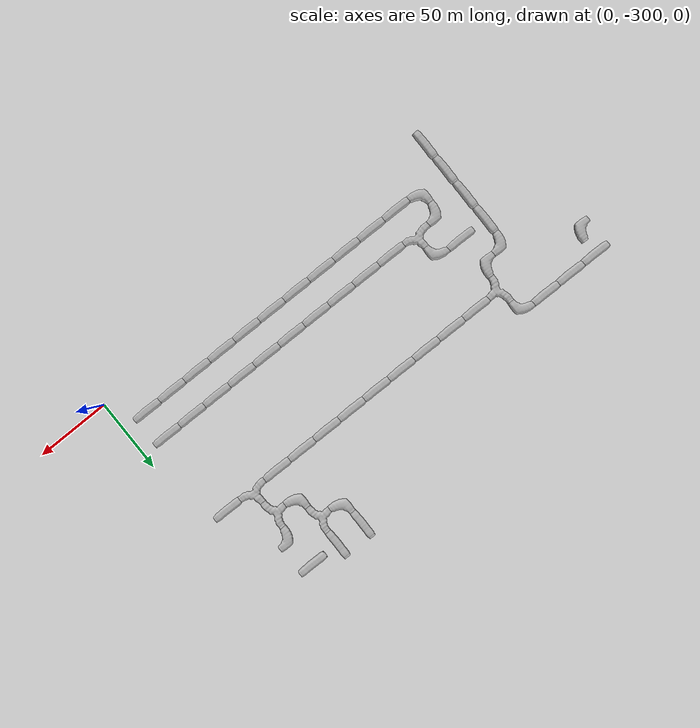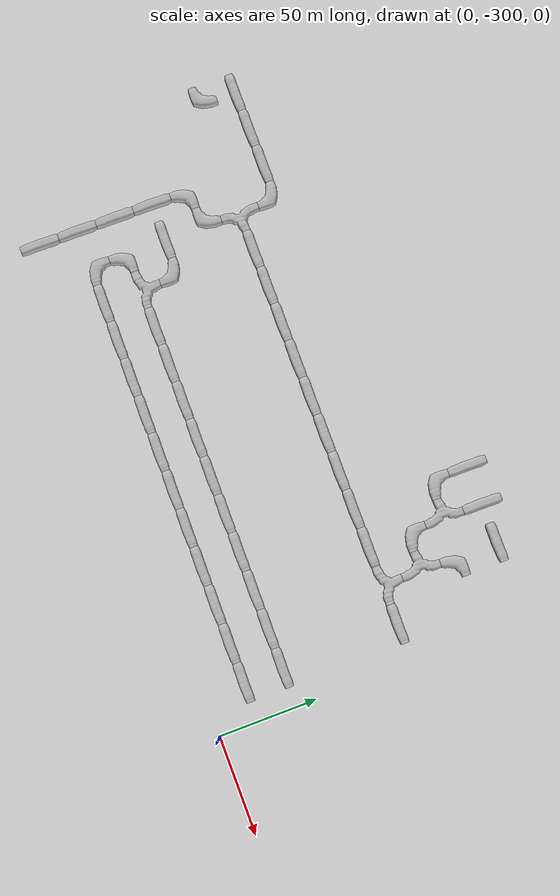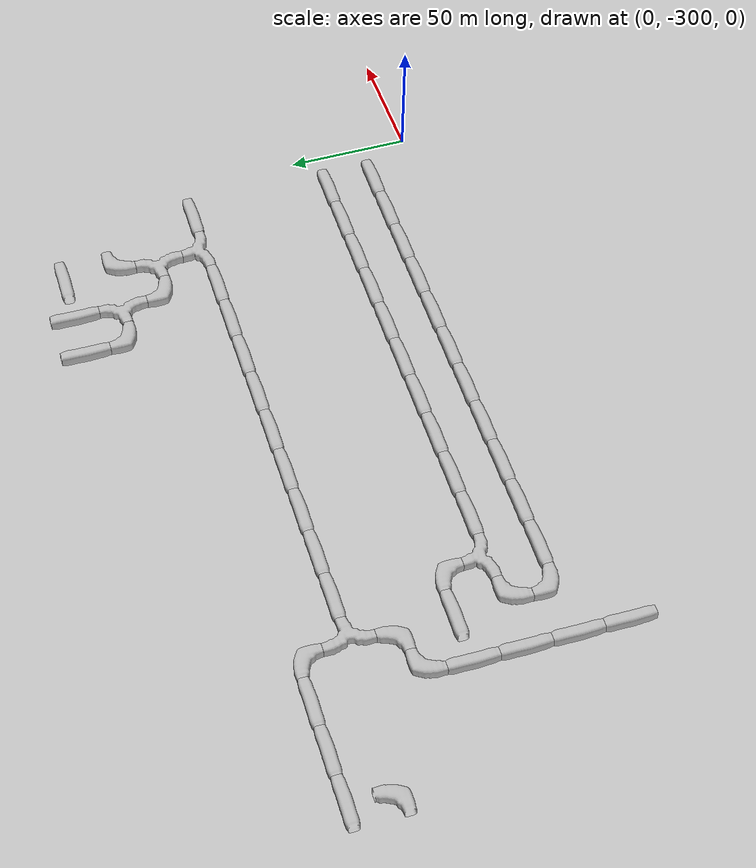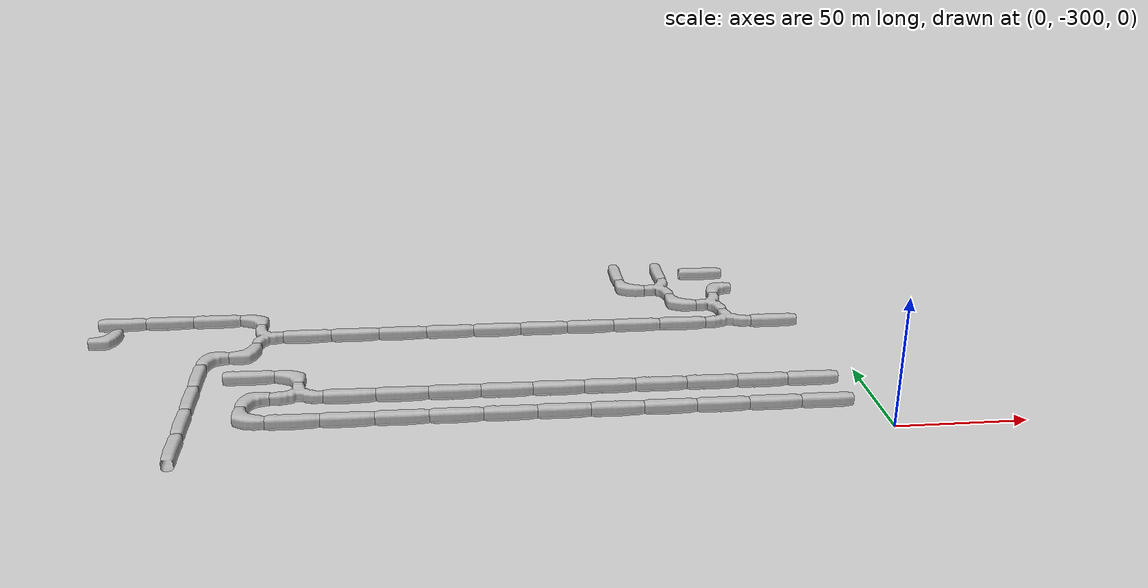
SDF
<sdf version="1.6">
 <world name="cave_32000_64">
  <include>
   <static>true</static>
   <name>cave_-3_-7</name>
   <pose>-60 -140 0 0 0 0.0</pose>
   <uri>model://cave_straight_20m</uri>
  </include>
  <include>
   <static>true</static>
   <name>cave_-3_-8</name>
   <pose>-60 -160 0 0 0 1.5707963267948966</pose>
   <uri>model://cave_3way_20m</uri>
  </include>
  <include>
   <static>true</static>
   <name>cave_-3_-9</name>
   <pose>-60 -180 0 0 0 0.0</pose>
   <uri>model://cave_L_20m</uri>
  </include>
  <include>
   <static>true</static>
   <name>cave_-2_-9</name>
   <pose>-40 -180 0 0 0 1.5707963267948966</pose>
   <uri>model://cave_3way_20m</uri>
  </include>
  <include>
   <static>true</static>
   <name>cave_-2_-10</name>
   <pose>-40 -200 0 0 0 0.0</pose>
   <uri>model://cave_3way_20m</uri>
  </include>
  <include>
   <static>true</static>
   <name>cave_-1_-10</name>
   <pose>-20 -200 0 0 0 1.5707963267948966</pose>
   <uri>model://cave_straight_20m</uri>
  </include>
  <include>
   <static>true</static>
   <name>cave_-3_-10</name>
   <pose>-60 -200 0 0 0 1.5707963267948966</pose>
   <uri>model://cave_straight_20m</uri>
  </include>
  <include>
   <static>true</static>
   <name>cave_-4_-10</name>
   <pose>-80 -200 0 0 0 1.5707963267948966</pose>
   <uri>model://cave_straight_20m</uri>
  </include>
  <include>
   <static>true</static>
   <name>cave_-5_-10</name>
   <pose>-100 -200 0 0 0 1.5707963267948966</pose>
   <uri>model://cave_straight_20m</uri>
  </include>
  <include>
   <static>true</static>
   <name>cave_-6_-10</name>
   <pose>-120 -200 0 0 0 1.5707963267948966</pose>
   <uri>model://cave_straight_20m</uri>
  </include>
  <include>
   <static>true</static>
   <name>cave_-7_-10</name>
   <pose>-140 -200 0 0 0 1.5707963267948966</pose>
   <uri>model://cave_straight_20m</uri>
  </include>
  <include>
   <static>true</static>
   <name>cave_-8_-10</name>
   <pose>-160 -200 0 0 0 1.5707963267948966</pose>
   <uri>model://cave_straight_20m</uri>
  </include>
  <include>
   <static>true</static>
   <name>cave_-9_-10</name>
   <pose>-180 -200 0 0 0 1.5707963267948966</pose>
   <uri>model://cave_straight_20m</uri>
  </include>
  <include>
   <static>true</static>
   <name>cave_-10_-10</name>
   <pose>-200 -200 0 0 0 1.5707963267948966</pose>
   <uri>model://cave_straight_20m</uri>
  </include>
  <include>
   <static>true</static>
   <name>cave_-11_-10</name>
   <pose>-220 -200 0 0 0 1.5707963267948966</pose>
   <uri>model://cave_straight_20m</uri>
  </include>
  <include>
   <static>true</static>
   <name>cave_-12_-10</name>
   <pose>-240 -200 0 0 0 -1.5707963267948966</pose>
   <uri>model://cave_3way_20m</uri>
  </include>
  <include>
   <static>true</static>
   <name>cave_-12_-11</name>
   <pose>-240 -220 0 0 0 1.5707963267948966</pose>
   <uri>model://cave_L_20m</uri>
  </include>
  <include>
   <static>true</static>
   <name>cave_-13_-11</name>
   <pose>-260 -220 0 0 0 -1.5707963267948966</pose>
   <uri>model://cave_L_20m</uri>
  </include>
  <include>
   <static>true</static>
   <name>cave_-13_-12</name>
   <pose>-260 -240 0 0 0 0.0</pose>
   <uri>model://cave_straight_20m</uri>
  </include>
  <include>
   <static>true</static>
   <name>cave_-13_-13</name>
   <pose>-260 -260 0 0 0 0.0</pose>
   <uri>model://cave_straight_20m</uri>
  </include>
  <include>
   <static>true</static>
   <name>cave_-13_-14</name>
   <pose>-260 -280 0 0 0 0.0</pose>
   <uri>model://cave_straight_20m</uri>
  </include>
  <include>
   <static>true</static>
   <name>cave_-13_-15</name>
   <pose>-260 -300 0 0 0 0.0</pose>
   <uri>model://cave_straight_20m</uri>
  </include>
  <include>
   <static>true</static>
   <name>cave_-12_-9</name>
   <pose>-240 -180 0 0 0 3.141592653589793</pose>
   <uri>model://cave_L_20m</uri>
  </include>
  <include>
   <static>true</static>
   <name>cave_-13_-9</name>
   <pose>-260 -180 0 0 0 1.5707963267948966</pose>
   <uri>model://cave_straight_20m</uri>
  </include>
  <include>
   <static>true</static>
   <name>cave_-14_-9</name>
   <pose>-280 -180 0 0 0 1.5707963267948966</pose>
   <uri>model://cave_straight_20m</uri>
  </include>
  <include>
   <static>true</static>
   <name>cave_-15_-9</name>
   <pose>-300 -180 0 0 0 1.5707963267948966</pose>
   <uri>model://cave_straight_20m</uri>
  </include>
  <include>
   <static>true</static>
   <name>cave_-15_-10</name>
   <pose>-300 -200 0 0 0 1.5707963267948966</pose>
   <uri>model://cave_L_20m</uri>
  </include>
  <include>
   <static>true</static>
   <name>cave_-1_-14</name>
   <pose>-20 -280 0 0 0 1.5707963267948966</pose>
   <uri>model://cave_straight_20m</uri>
  </include>
  <include>
   <static>true</static>
   <name>cave_-2_-14</name>
   <pose>-40 -280 0 0 0 1.5707963267948966</pose>
   <uri>model://cave_straight_20m</uri>
  </include>
  <include>
   <static>true</static>
   <name>cave_-3_-14</name>
   <pose>-60 -280 0 0 0 1.5707963267948966</pose>
   <uri>model://cave_straight_20m</uri>
  </include>
  <include>
   <static>true</static>
   <name>cave_-4_-14</name>
   <pose>-80 -280 0 0 0 1.5707963267948966</pose>
   <uri>model://cave_straight_20m</uri>
  </include>
  <include>
   <static>true</static>
   <name>cave_-5_-14</name>
   <pose>-100 -280 0 0 0 1.5707963267948966</pose>
   <uri>model://cave_straight_20m</uri>
  </include>
  <include>
   <static>true</static>
   <name>cave_-6_-14</name>
   <pose>-120 -280 0 0 0 1.5707963267948966</pose>
   <uri>model://cave_straight_20m</uri>
  </include>
  <include>
   <static>true</static>
   <name>cave_-7_-14</name>
   <pose>-140 -280 0 0 0 1.5707963267948966</pose>
   <uri>model://cave_straight_20m</uri>
  </include>
  <include>
   <static>true</static>
   <name>cave_-8_-14</name>
   <pose>-160 -280 0 0 0 1.5707963267948966</pose>
   <uri>model://cave_straight_20m</uri>
  </include>
  <include>
   <static>true</static>
   <name>cave_-9_-14</name>
   <pose>-180 -280 0 0 0 1.5707963267948966</pose>
   <uri>model://cave_straight_20m</uri>
  </include>
  <include>
   <static>true</static>
   <name>cave_-10_-14</name>
   <pose>-200 -280 0 0 0 1.5707963267948966</pose>
   <uri>model://cave_straight_20m</uri>
  </include>
  <include>
   <static>true</static>
   <name>cave_-11_-14</name>
   <pose>-220 -280 0 0 0 1.5707963267948966</pose>
   <uri>model://cave_straight_20m</uri>
  </include>
  <include>
   <static>true</static>
   <name>cave_-12_-14</name>
   <pose>-240 -280 0 0 0 0.0</pose>
   <uri>model://cave_L_20m</uri>
  </include>
  <include>
   <static>true</static>
   <name>cave_-12_-13</name>
   <pose>-240 -260 0 0 0 -1.5707963267948966</pose>
   <uri>model://cave_L_20m</uri>
  </include>
  <include>
   <static>true</static>
   <name>cave_-11_-13</name>
   <pose>-220 -260 0 0 0 0.0</pose>
   <uri>model://cave_3way_20m</uri>
  </include>
  <include>
   <static>true</static>
   <name>cave_-10_-13</name>
   <pose>-200 -260 0 0 0 1.5707963267948966</pose>
   <uri>model://cave_straight_20m</uri>
  </include>
  <include>
   <static>true</static>
   <name>cave_-9_-13</name>
   <pose>-180 -260 0 0 0 1.5707963267948966</pose>
   <uri>model://cave_straight_20m</uri>
  </include>
  <include>
   <static>true</static>
   <name>cave_-8_-13</name>
   <pose>-160 -260 0 0 0 1.5707963267948966</pose>
   <uri>model://cave_straight_20m</uri>
  </include>
  <include>
   <static>true</static>
   <name>cave_-7_-13</name>
   <pose>-140 -260 0 0 0 1.5707963267948966</pose>
   <uri>model://cave_straight_20m</uri>
  </include>
  <include>
   <static>true</static>
   <name>cave_-6_-13</name>
   <pose>-120 -260 0 0 0 1.5707963267948966</pose>
   <uri>model://cave_straight_20m</uri>
  </include>
  <include>
   <static>true</static>
   <name>cave_-5_-13</name>
   <pose>-100 -260 0 0 0 1.5707963267948966</pose>
   <uri>model://cave_straight_20m</uri>
  </include>
  <include>
   <static>true</static>
   <name>cave_-4_-13</name>
   <pose>-80 -260 0 0 0 1.5707963267948966</pose>
   <uri>model://cave_straight_20m</uri>
  </include>
  <include>
   <static>true</static>
   <name>cave_-3_-13</name>
   <pose>-60 -260 0 0 0 1.5707963267948966</pose>
   <uri>model://cave_straight_20m</uri>
  </include>
  <include>
   <static>true</static>
   <name>cave_-2_-13</name>
   <pose>-40 -260 0 0 0 1.5707963267948966</pose>
   <uri>model://cave_straight_20m</uri>
  </include>
  <include>
   <static>true</static>
   <name>cave_-1_-13</name>
   <pose>-20 -260 0 0 0 1.5707963267948966</pose>
   <uri>model://cave_straight_20m</uri>
  </include>
  <include>
   <static>true</static>
   <name>cave_-11_-12</name>
   <pose>-220 -240 0 0 0 3.141592653589793</pose>
   <uri>model://cave_L_20m</uri>
  </include>
  <include>
   <static>true</static>
   <name>cave_-12_-12</name>
   <pose>-240 -240 0 0 0 1.5707963267948966</pose>
   <uri>model://cave_straight_20m</uri>
  </include>
  <include>
   <static>true</static>
   <name>cave_-2_-8</name>
   <pose>-40 -160 0 0 0 -1.5707963267948966</pose>
   <uri>model://cave_L_20m</uri>
  </include>
  <include>
   <static>true</static>
   <name>cave_-2_-7</name>
   <pose>-40 -140 0 0 0 1.5707963267948966</pose>
   <uri>model://cave_straight_20m</uri>
  </include>
  <include>
   <static>true</static>
   <name>cave_-4_-8</name>
   <pose>-80 -160 0 0 0 0.0</pose>
   <uri>model://cave_L_20m</uri>
  </include>
  <include>
   <static>true</static>
   <name>cave_-4_-7</name>
   <pose>-80 -140 0 0 0 0.0</pose>
   <uri>model://cave_straight_20m</uri>
  </include>
 </world>
</sdf>
